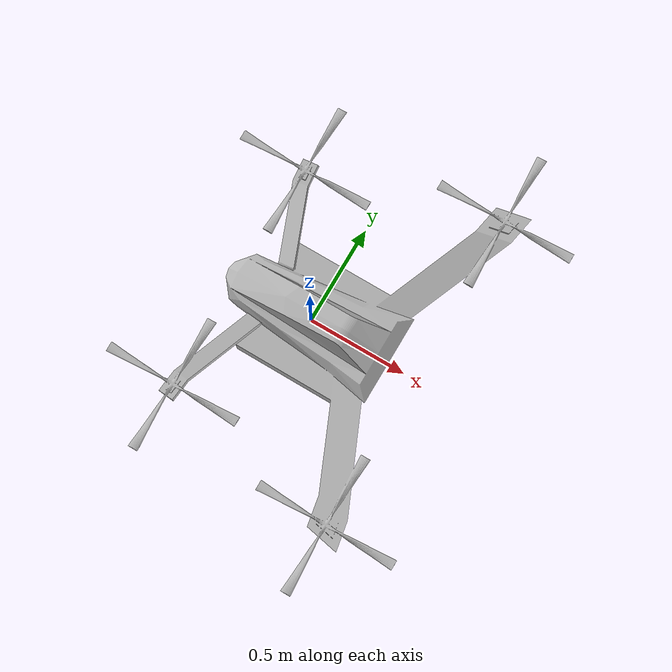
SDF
<?xml version="1.0" ?>
<sdf version="1.6">
  <model name="drone">
    <static>true</static>
    <link name="link">
      <collision name="collision">
        <geometry>
          <mesh>
            <scale>1.3 1.3 1</scale>
            <uri>model://drone_ariac/meshes/drone.obj</uri>
          </mesh>
        </geometry>
      </collision>
      <visual name="visual">
        <geometry>
          <mesh>
            <scale>1.3 1.3 1</scale>
            <uri>model://drone_ariac/meshes/drone.obj</uri>
          </mesh>
        </geometry>
      </visual>
    </link>
  </model>
</sdf>
